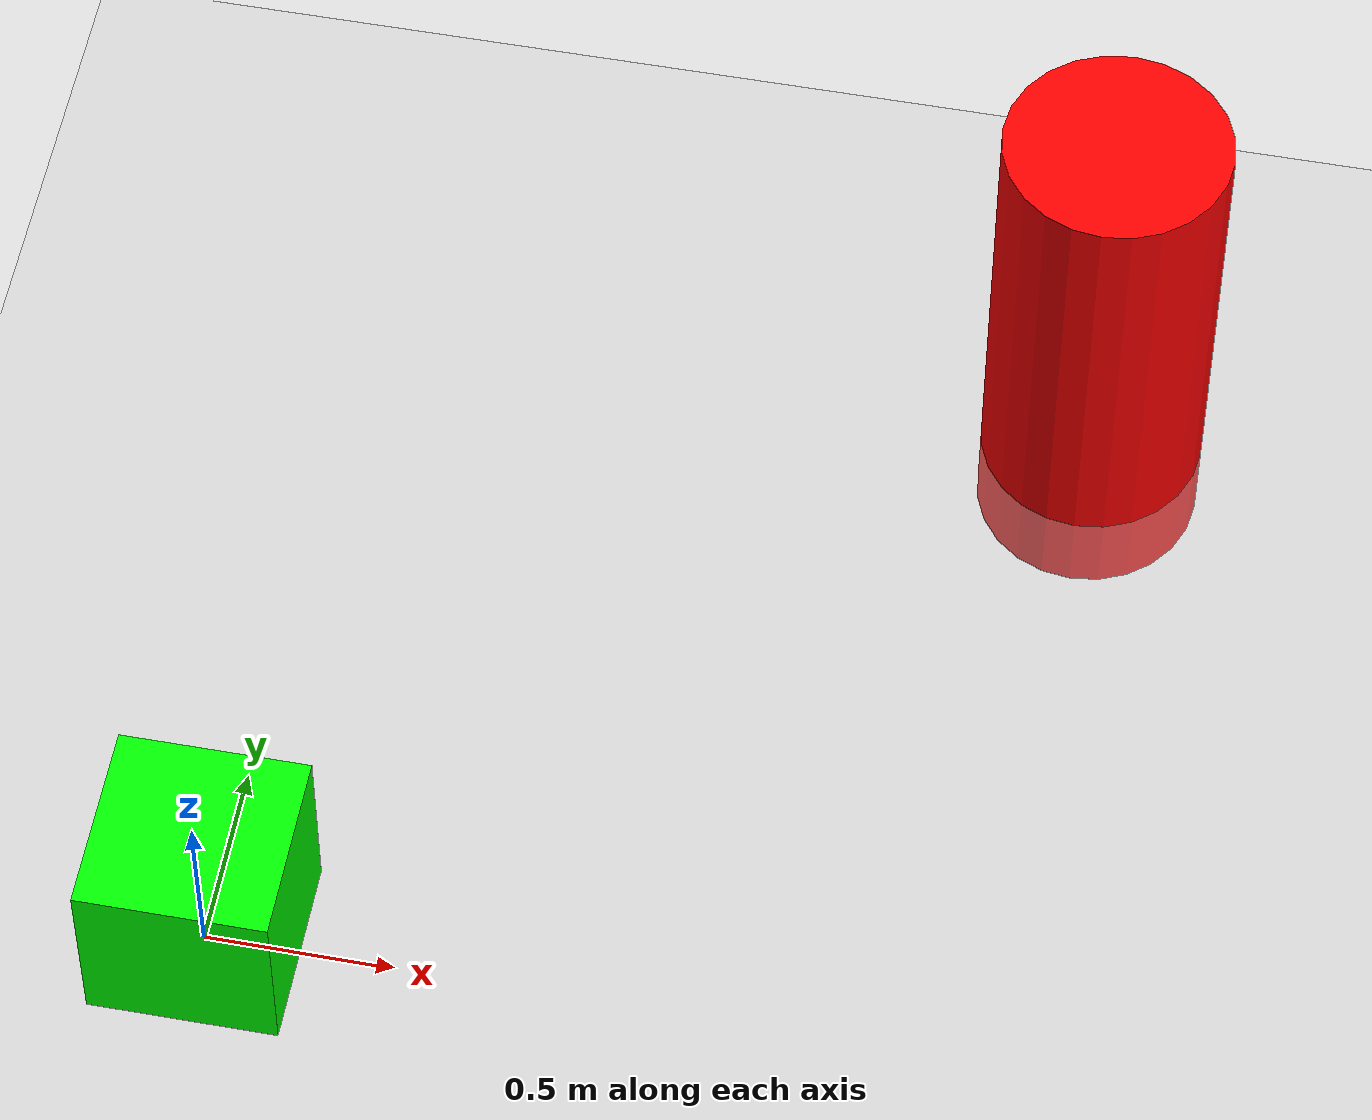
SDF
<?xml version="1.0" ?>
<sdf version="1.9">
  <world name="test_dynamic_world">
    <physics name="1ms" type="ignored">
      <max_step_size>0.001</max_step_size>
      <real_time_factor>1</real_time_factor>
    </physics>
    <plugin name="ignition::gazebo::systems::Physics" filename="ignition-gazebo-physics-system"/>
    <plugin name="ignition::gazebo::systems::SceneBroadcaster" filename="ignition-gazebo-scene-broadcaster-system"/>

    <light name="sun" type="directional"><pose>0 0 10 0 0 0</pose></light>
    <model name="ground_plane">
      <static>true</static>
      <link name="link">
        <collision name="collision"><geometry><plane><normal>0 0 1</normal><size>100 100</size></plane></geometry></collision>
        <visual name="visual"><geometry><plane><normal>0 0 1</normal><size>100 100</size></plane></geometry></visual>
      </link>
    </model>

    <model name="dummy_robot">
      <static>true</static>
      <pose>0 0 0.25 0 0 0</pose>
      <link name="link">
        <visual name="visual">
          <geometry><box><size>0.5 0.5 0.5</size></box></geometry>
          <material><ambient>0 1 0 1</ambient><diffuse>0 1 0 1</diffuse></material>
        </visual>
      </link>
    </model>

    <model name="dynamic_obstacle">
      <pose>2.0 2.0 0.5 0 0 0</pose>
      <link name="link">
        <collision name="collision">
          <geometry><cylinder><radius>0.3</radius><length>1.5</length></cylinder></geometry>
        </collision>
        <visual name="visual">
          <geometry><cylinder><radius>0.3</radius><length>1.5</length></cylinder></geometry>
          <material><ambient>1 0 0 1</ambient><diffuse>1 0 0 1</diffuse></material>
        </visual>
      </link>
      <plugin filename="ignition-gazebo-velocity-control-system" name="ignition::gazebo::systems::VelocityControl">
        <topic>/obstacle/cmd_vel</topic>
      </plugin>
    </model>

  </world>
</sdf>
